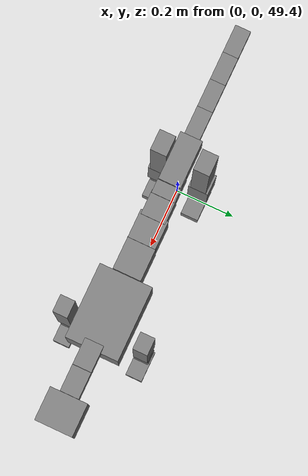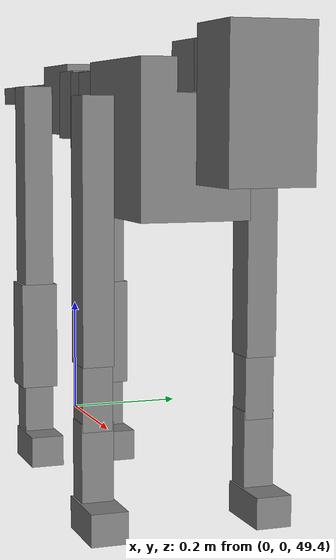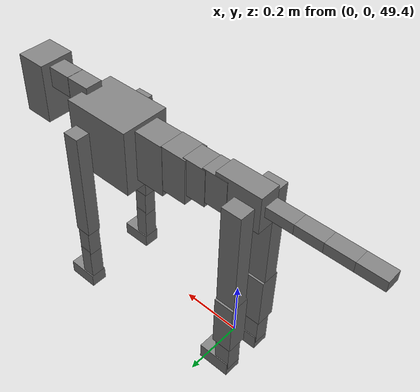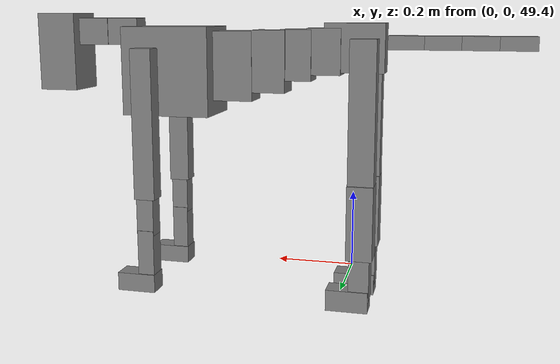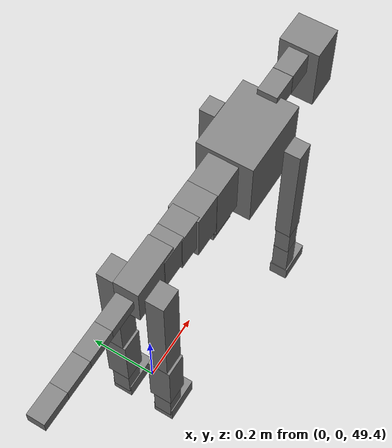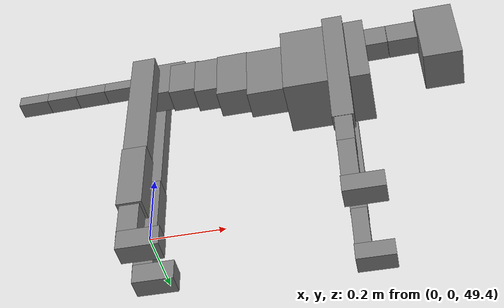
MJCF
<mujoco model="dog">

    <default>
        <joint armature="0.02" stiffness="1" damping="0.2" limited="true"/>
        <geom condim="3" friction="1 0.05 0.05" margin="0.01"/>
        <motor ctrllimited="true" ctrlrange="-1.0 1.0" forcelimited="true" gear="50"/>
    </default>

    <compiler inertiafromgeom="true" angle="radian"/>

    <option timestep="0.016" iterations="50" tolerance="1e-10" solver="Newton" jacobian="dense" cone="pyramidal"/>

    <size nconmax="20000" njmax="60000" nstack="5000000"/>
    <visual>
        <map force="0.1" zfar="30"/>
        <rgba haze="0.15 0.25 0.35 1"/>
        <quality shadowsize="2048"/>
        <global offwidth="800" offheight="800"/>
    </visual>

    <asset>
        <texture type="skybox" builtin="gradient" rgb1="0.3 0.5 0.7" rgb2="0 0 0" width="512" height="512"/>
        <texture name="texplane" type="2d" builtin="checker" rgb1=".2 .3 .4" rgb2=".1 0.15 0.2" width="512" height="512"
                 mark="cross" markrgb=".8 .8 .8"/>
        <texture name="texgeom" type="cube" builtin="flat" mark="cross" width="127" height="1278" rgb1="0.8 0.6 0.4"
                 rgb2="0.8 0.6 0.4" markrgb="1 1 1" random="0.01"/>

        <material name="matplane" reflectance="0.3" texture="texplane" texrepeat="1 1" texuniform="true"/>
        <material name="matgeom" texture="texgeom" texuniform="true" rgba="0.8 0.6 .4 1"/>
    </asset>

    <worldbody>
        <geom name="floor" pos="0 0 0" size="0 0 .25" type="plane" material="matplane" condim="3"/>

        <light directional="false" diffuse=".2 .2 .2" specular="0 0 0" pos="0 0 5" dir="0 0 -1" castshadow="false"/>
        <light mode="targetbodycom" target="torso" directional="false" diffuse=".8 .8 .8" specular="0.3 0.3 0.3"
               pos="0 0 4.0" dir="0 0 -1"/>

        <body name="root" pos="0 0 50">
            <freejoint name="root_1"/>
            <geom type="box" pos="0 0 -0.02" size="0.0774  0.0358  0.063" density="2030"/>

            <body name="spine1" pos="0.054 0 0">
                <joint name="spine1_y" axis="0 1 0" range="0 0.7" limited="true"/>
                <geom type="box" pos="0.02375 0 -0.03" size="0.04375  0.0375  0.05985" density="2030"/>

                <body name="spine2" pos="0.0612 0 0">
                    <joint name="spine2_y" axis="0 1 0" range="-0.15 0.15" limited="true"/>
                    <geom type="box" pos="0.03555  0  -0.04" size="0.04055  0.039  0.06615" density="2030"/>

                    <body name="spine3" pos="0.0730 0 0">
                        <joint name="spine3_y" axis="0 1 0" range="-0.15 0.15" limited="true"/>
                        <geom type="box" pos="0.03555  0  -0.057" size="0.04555  0.0445  0.081" density="2030"/>

                        <body name="spine4" pos="0.0780 0 0">
                            <joint name="spine4_y" axis="0 1 0" range="-0.15 0.15" limited="true"/>
                            <geom type="box" pos="0.05265  0  -0.07" size="0.05265  0.045  0.09135" density="2030"/>

                            <body name="torso" pos="0.1082 0 0">
                                <joint name="torso_y" axis="0 1 0" range="-0.15 0.15" limited="true"/>
                                <geom type="box" pos="0.11925  0  -0.085" size="0.11925  0.085  0.11745"
                                      density="2030"/>

                                <body name="neck1" pos="0.2160  0   0.0180">
                                    <joint name="neck1_y" axis="0 1 0" range="-1.2  -1" limited="true"/>
                                    <geom type="box" pos="0.0423  0  0" size="0.0423  0.03  0.036" density="2325"/>

                                    <body name="neck2" pos="0.0853  0  0">
                                        <joint name="neck2_y" axis="0 1 0" range="0.1  0" limited="true"/>
                                        <geom type="box" pos="0.0423  0  0" size="0.0423  0.03  0.036" density="2325"/>

                                        <body name="head" pos="0.0853  0  0">
                                            <joint name="head_y" axis="0 1 0" range="-0.3  -0.2" limited="true"/>
                                            <geom type="box" pos="0.0531  0  -0.055" size="0.0531  0.06  0.1044"
                                                  density="4030"/>

                                        </body>
                                    </body>
                                </body>

                                <body name="front_shoulder" pos="0.156  0   -0.0480">
                                    <joint name="front_shoulder_y" axis="0 1 0" range="-1 1.5" limited="true"/>
                                    <geom type="box" pos="0 0.13 -0.1708" size="0.0280  0.0240  0.1975" density="1158"/>
                                    <geom type="box" pos="0 -0.13 -0.1708" size="0.0280  0.0240  0.1975"
                                          density="1158"/>

                                    <body name="front_elbow" pos="0  0  -0.3417">
                                        <joint name="front_elbow_y" axis="0 1 0" range="-2 0" limited="true"/>
                                        <geom type="box" pos="0 0.13 -0.0621" size="0.0228  0.0233  0.0621"
                                              density="1081"/>
                                        <geom type="box" pos="0 -0.13 -0.0621" size="0.0228  0.0233  0.0621"
                                              density="1081"/>

                                        <body name="front_wrist" pos="0  0  -0.1243">
                                            <joint name="front_wrist_y" axis="0 1 0" range="-0.2 0" limited="true"/>
                                            <geom type="box" pos="0 0.13 -0.0607" size="0.0220  0.0245  0.0739"
                                                  density="1664"/>
                                            <geom type="box" pos="0 -0.13 -0.0607" size="0.0220  0.0245  0.0739"
                                                  density="1664"/>

                                            <body name="front_finger_end" pos="0  0  -0.1214">
                                                <joint name="front_finger_y" axis="0 1 0" range="-0.4 1"
                                                       limited="true"/>
                                                <geom type="box" pos="0.0283  0.13  -0.0094"
                                                      size="0.0519  0.0283  0.0244" density="1515"/>
                                                <geom type="box" pos="0.0283  -0.13  -0.0094"
                                                      size="0.0519  0.0283  0.0244" density="1515"/>

                                            </body>

                                        </body>
                                    </body>
                                </body>

                            </body>
                        </body>
                    </body>
                </body>
            </body>

            <body name="back_hip" pos="-0.03 0 -0.018">
                <joint name="back_hip_y" axis="0 1 0" range="-1.5 0.3" limited="true"/>
                <geom type="box" pos="0 0.07 -0.1802" size="0.0336  0.0264  0.2030" density="1154"/>
                <geom type="box" pos="0 -0.07 -0.1802" size="0.0336  0.0264  0.2030" density="1154"/>

                <body name="back_knee" pos="0  0  -0.3604">
                    <joint name="back_knee_y" axis="0 1 0" range="0 2.8" limited="true"/>
                    <geom type="box" pos="0 0.07 -0.0820" size="0.0338  0.0333  0.0975" density="1227"/>
                    <geom type="box" pos="0 -0.07 -0.0820" size="0.0338  0.0333  0.0975" density="1227"/>

                    <body name="back_ankle" pos="0  0  -0.1639">
                        <joint name="back_ankle_y" axis="0 1 0" range="-2.2 0" limited="true"/>
                        <geom type="box" pos="0 0.07 -0.0575" size="0.0268  0.0268  0.0687" density="1284"/>
                        <geom type="box" pos="0 -0.07 -0.0575" size="0.0268  0.0268  0.0687" density="1284"/>

                        <body name="back_toe_end" pos="0  0  -0.1149">
                            <joint name="back_toe_y" axis="0 1 0" range="-0.4 1" limited="true"/>
                            <geom type="box" pos="0.0300  0.07  -0.0129" size="0.0550  0.0300  0.0279" density="1515"/>
                            <geom type="box" pos="0.0300  -0.07  -0.0129" size="0.0550  0.0300  0.0279" density="1515"/>

                        </body>
                    </body>
                </body>
            </body>

            <body name="tail1" pos="-0.074 0 -0.006">
                <joint name="tail1_y" axis="0 1 0" range="-0.2 0.2" limited="true"/>
                <geom type="box" pos="-0.0536  0  0" size="0.045  0.025  0.0175" density="1587"/>

                <body name="tail2" pos="-0.09 0 0">
                    <joint name="tail2_y" axis="0 1 0" range="-0.2 0.2" limited="true"/>
                    <geom type="box" pos="-0.0536  0  0" size="0.045  0.025  0.0175" density="1587"/>

                    <body name="tail3" pos="-0.09 0 0">
                        <joint name="tail3_y" axis="0 1 0" range="-0.2 0.2" limited="true"/>
                        <geom type="box" pos="-0.0536  0  0" size="0.045  0.025  0.0175" density="1587"/>

                        <body name="tail4" pos="-0.09 0 0">
                            <joint name="tail4_y" axis="0 1 0" range="-0.2 0.2" limited="true"/>
                            <geom type="box" pos="-0.0536  0  0" size="0.045  0.025  0.0175" density="1587"/>

                        </body>
                    </body>
                </body>
            </body>
        </body>
    </worldbody>

    <actuator>
        <motor joint="spine1_y" forcerange="-150 150     "/>
        <motor joint="spine2_y" forcerange="-150 150     "/>
        <motor joint="spine3_y" forcerange="-150 150     "/>
        <motor joint="spine4_y" forcerange="-150 150     "/>
        <motor joint="torso_y" forcerange="-150 150     "/>
        <motor joint="neck1_y" forcerange="-100 100       "/>
        <motor joint="neck2_y" forcerange="-100 100       "/>
        <motor joint="head_y" forcerange="-150 150       "/>
        <motor joint="front_shoulder_y" forcerange="-146.30 113.46"/>
        <motor joint="front_elbow_y" forcerange="-118.05 151.66"/>
        <motor joint="front_wrist_y" forcerange="-143.51 52.09"/>
        <motor joint="front_finger_y" forcerange="-45.92 64.92"/>
        <motor joint="back_hip_y" forcerange="-272.68 279.14"/>
        <motor joint="back_knee_y" forcerange="-371.96 312.34"/>
        <motor joint="back_angle_y" forcerange="-133.06 195.29"/>
        <motor joint="back_toe_y" forcerange="-85.12 74.84"/>
        <motor joint="tail1_y" forcerange="-50 50     "/>
        <motor joint="tail2_y" forcerange="-50 50     "/>
        <motor joint="tail3_y" forcerange="-50 50     "/>
        <motor joint="tail4_y" forcerange="-50 50     "/>
    </actuator>
</mujoco>
